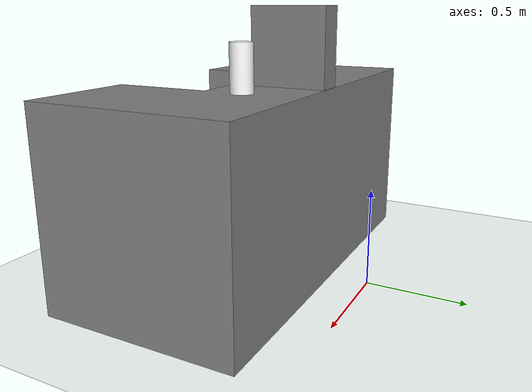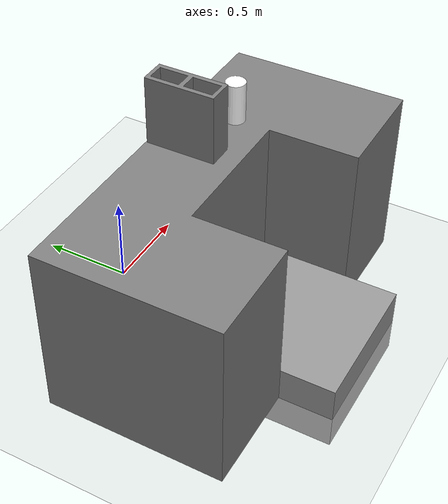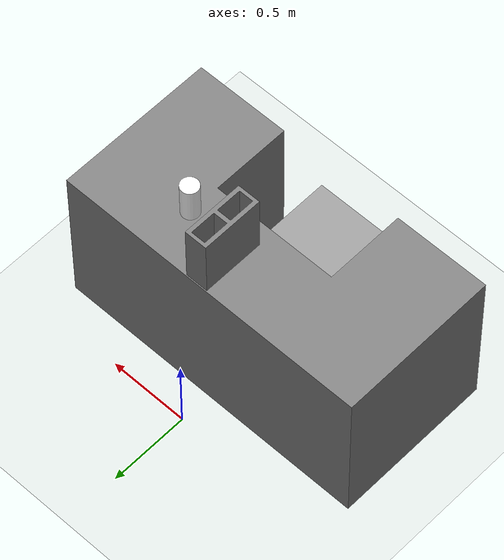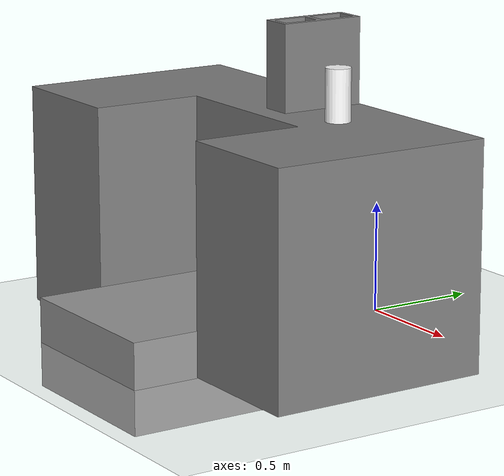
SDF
<sdf version="1.4">
 <world name="default">
  <scene>
   <ambient>255 255 255 255</ambient>
   <background>255 255 255 255</background>
   <origin_visual>0</origin_visual>
  </scene>
  <include><uri>model://ground_plane</uri></include>
  <light type="directional" name="sun">
   <cast_shadows>True</cast_shadows>
   <pose>10 20 20 -0.6 -0.45 0.0</pose>
   <diffuse>1 1 1 1</diffuse>
   <specular>0.2 0.2 0.2 1</specular>
   <attenuation>
    <range>1000</range>
    <constant>0.9</constant>
    <linear>0.01</linear>
    <quadratic>0.001</quadratic>
   </attenuation>
   <direction>-0.5 0.1 -0.9</direction>
  </light>
  <include>
   <uri>file:///home/jth/thesis_ws/src/mrk_robot_support/models/risebox</uri>
   <pose>0 -1.1 0  0 0 0</pose>
  </include>
  <include>
   <uri>file:///home/jth/thesis_ws/src/mrk_robot_support/models/workbench</uri>
   <pose>0 -1.2 0  0 0 0</pose>
  </include>
  <include>
   <uri>file:///home/jth/thesis_ws/src/mrk_robot_support/models/beer</uri>
   <pose>0.4 -0.5 1.0  0 0 0</pose>
  </include>
  <include>
   <uri>file:///home/jth/thesis_ws/src/mrk_robot_support/models/cinder_block_wide</uri>
   <pose>0 -0.4 1.19 0 1.5708 0</pose>
  </include>
 </world>
</sdf>

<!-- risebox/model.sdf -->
<sdf version='1.6'>
  <model name='risebox'>
    <link name='link'>
      <pose frame=''>0 0 0 0 -0 0</pose>
      <inertial>
        <mass>100</mass>
        <inertia>
          <ixx>6.6667</ixx>
          <ixy>0</ixy>
          <ixz>0</ixz>
          <iyy>6.6667</iyy>
          <iyz>0</iyz>
          <izz>10.6667</izz>
        </inertia>
        <pose frame=''>0 0 0 0 -0 0</pose>
      </inertial>
      <self_collide>0</self_collide>
      <kinematic>0</kinematic>
      <gravity>1</gravity>
      <visual name='visual'>
        <geometry>
          <box>
            <size>0.8 0.8 0.4</size>
          </box>
        </geometry>
        <material>
          <script>
            <name>Gazebo/Grey</name>
            <uri>file://media/materials/scripts/gazebo.material</uri>
          </script>
          <ambient>0.3 0.3 0.3 1</ambient>
          <diffuse>0.7 0.7 0.7 1</diffuse>
          <specular>0.01 0.01 0.01 1</specular>
          <emissive>0 0 0 1</emissive>
          <shader type='vertex'>
            <normal_map>__default__</normal_map>
          </shader>
        </material>
        <pose frame=''>0 0 0 0 -0 0</pose>
        <cast_shadows>1</cast_shadows>
        <transparency>0</transparency>
      </visual>
      <collision name='collision'>
        <laser_retro>0</laser_retro>
        <max_contacts>10</max_contacts>
        <pose frame=''>0 0 0 0 -0 0</pose>
        <geometry>
          <box>
            <size>0.8 0.8 0.4</size>
          </box>
        </geometry>
        <surface>
          <friction>
            <ode>
              <mu>1</mu>
              <mu2>1</mu2>
              <fdir1>0 0 0</fdir1>
              <slip1>0</slip1>
              <slip2>0</slip2>
            </ode>
            <torsional>
              <coefficient>1</coefficient>
              <patch_radius>0</patch_radius>
              <surface_radius>0</surface_radius>
              <use_patch_radius>1</use_patch_radius>
              <ode>
                <slip>0</slip>
              </ode>
            </torsional>
          </friction>
          <bounce>
            <restitution_coefficient>0</restitution_coefficient>
            <threshold>1e+06</threshold>
          </bounce>
          <contact>
            <collide_without_contact>0</collide_without_contact>
            <collide_without_contact_bitmask>1</collide_without_contact_bitmask>
            <collide_bitmask>1</collide_bitmask>
            <ode>
              <soft_cfm>0</soft_cfm>
              <soft_erp>0.2</soft_erp>
              <kp>1e+13</kp>
              <kd>1</kd>
              <max_vel>0.01</max_vel>
              <min_depth>0</min_depth>
            </ode>
            <bullet>
              <split_impulse>1</split_impulse>
              <split_impulse_penetration_threshold>-0.01</split_impulse_penetration_threshold>
              <soft_cfm>0</soft_cfm>
              <soft_erp>0.2</soft_erp>
              <kp>1e+13</kp>
              <kd>1</kd>
            </bullet>
          </contact>
        </surface>
      </collision>
    </link>
    <static>0</static>
    <allow_auto_disable>1</allow_auto_disable>
  </model>
</sdf>

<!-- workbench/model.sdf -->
<sdf version='1.6'>
  <model name='workbench'>
    <link name='body'>
      <pose frame=''>0 0 0 0 -0 0</pose>
      <inertial>
        <mass>1000</mass>
        <pose frame=''>0 0 0 0 -0 0</pose>
        <inertia>
          <ixx>166.666667</ixx>
          <ixy>0</ixy>
          <ixz>0</ixz>
          <iyy>416.666667</iyy>
          <iyz>0</iyz>
          <izz>416.666667</izz>
        </inertia>
      </inertial>
      <self_collide>0</self_collide>
      <kinematic>0</kinematic>
      <visual name='visual'>
        <geometry>
          <mesh>
            <uri>file:///home/jth/thesis_ws/src/mrk_robot_support/meshes/workbench/workbench.dae</uri>
            <scale>0.001 0.001 0.001</scale>
          </mesh>
        </geometry>
        <pose frame=''>0 0 0 0 -0 0</pose>
        <cast_shadows>1</cast_shadows>
        <transparency>0</transparency>
        <material>
          <ambient>0 0 0 1</ambient>
          <diffuse>0.5 0.5 0.5 1</diffuse>
          <specular>0 0 0 1</specular>
          <emissive>0 0 0 1</emissive>
          <shader type='vertex'>
            <normal_map>__default__</normal_map>
          </shader>
        </material>
      </visual>
      <collision name='collision'>
        <laser_retro>0</laser_retro>
        <max_contacts>10</max_contacts>
        <pose frame=''>0 0 0 0 -0 0</pose>
        <geometry>
          <mesh>
            <uri>file:///home/jth/thesis_ws/src/mrk_robot_support/meshes/workbench/workbench.dae</uri>
            <scale>0.001 0.001 0.001</scale>
          </mesh>
        </geometry>
        <surface>
          <friction>
            <ode>
              <mu>1</mu>
              <mu2>1</mu2>
              <fdir1>0 0 0</fdir1>
              <slip1>0</slip1>
              <slip2>0</slip2>
            </ode>
            <torsional>
              <coefficient>1</coefficient>
              <patch_radius>0</patch_radius>
              <surface_radius>0</surface_radius>
              <use_patch_radius>1</use_patch_radius>
              <ode>
                <slip>0</slip>
              </ode>
            </torsional>
          </friction>
          <bounce>
            <restitution_coefficient>0</restitution_coefficient>
            <threshold>1e+06</threshold>
          </bounce>
          <contact>
            <collide_without_contact>0</collide_without_contact>
            <collide_without_contact_bitmask>1</collide_without_contact_bitmask>
            <collide_bitmask>1</collide_bitmask>
            <ode>
              <soft_cfm>0</soft_cfm>
              <soft_erp>0.2</soft_erp>
              <kp>1e+13</kp>
              <kd>1</kd>
              <max_vel>0.01</max_vel>
              <min_depth>0</min_depth>
            </ode>
            <bullet>
              <split_impulse>1</split_impulse>
              <split_impulse_penetration_threshold>-0.01</split_impulse_penetration_threshold>
              <soft_cfm>0</soft_cfm>
              <soft_erp>0.2</soft_erp>
              <kp>1e+13</kp>
              <kd>1</kd>
            </bullet>
          </contact>
        </surface>
      </collision>
    </link>
    <static>1</static>
    <allow_auto_disable>1</allow_auto_disable>
  </model>
</sdf>

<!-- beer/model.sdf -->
<sdf version='1.6'>
  <model name='beer2'>
    <link name='link'>
      <pose frame=''>-0 0 0.115 0 -0 0</pose>
      <inertial>
        <mass>0.39</mass>
        <inertia>
          <ixx>0.00058</ixx>
          <ixy>0</ixy>
          <ixz>0</ixz>
          <iyy>0.00058</iyy>
          <iyz>0</iyz>
          <izz>0.00019</izz>
        </inertia>
        <pose frame=''>0 0 0 0 -0 0</pose>
      </inertial>
      <self_collide>0</self_collide>
      <kinematic>0</kinematic>
      <gravity>1</gravity>
      <visual name='visual'>
        <geometry>
          <cylinder>
            <radius>0.055</radius>
            <length>0.23</length>
          </cylinder>
        </geometry>
        <material>
          <script>
            <uri>model://beer/materials/scripts</uri>
            <uri>model://beer/materials/textures</uri>
            <name>Beer/Diffuse</name>
          </script>
          <ambient>1 1 1 1</ambient>
          <diffuse>1 1 1 1</diffuse>
          <specular>0 0 0 1</specular>
          <emissive>0 0 0 1</emissive>
          <shader type='vertex'>
            <normal_map>__default__</normal_map>
          </shader>
        </material>
        <pose frame=''>0 0 0 0 -0 0</pose>
        <cast_shadows>1</cast_shadows>
        <transparency>0</transparency>
      </visual>
      <collision name='collision'>
        <laser_retro>0</laser_retro>
        <max_contacts>10</max_contacts>
        <pose frame=''>0 0 0 0 -0 0</pose>
        <geometry>
          <box>
            <size>0.11 0.11 0.23</size>
          </box>
        </geometry>
        <surface>
          <friction>
            <ode>
              <mu>1</mu>
              <mu2>1</mu2>
              <fdir1>0 0 0</fdir1>
              <slip1>0</slip1>
              <slip2>0</slip2>
            </ode>
            <torsional>
              <coefficient>1</coefficient>
              <patch_radius>0</patch_radius>
              <surface_radius>0</surface_radius>
              <use_patch_radius>1</use_patch_radius>
              <ode>
                <slip>0</slip>
              </ode>
            </torsional>
          </friction>
          <bounce>
            <restitution_coefficient>0</restitution_coefficient>
            <threshold>1e+06</threshold>
          </bounce>
          <contact>
            <collide_without_contact>0</collide_without_contact>
            <collide_without_contact_bitmask>1</collide_without_contact_bitmask>
            <collide_bitmask>1</collide_bitmask>
            <ode>
              <soft_cfm>0</soft_cfm>
              <soft_erp>0.2</soft_erp>
              <kp>1e+13</kp>
              <kd>1</kd>
              <max_vel>0.01</max_vel>
              <min_depth>0</min_depth>
            </ode>
            <bullet>
              <split_impulse>1</split_impulse>
              <split_impulse_penetration_threshold>-0.01</split_impulse_penetration_threshold>
              <soft_cfm>0</soft_cfm>
              <soft_erp>0.2</soft_erp>
              <kp>1e+13</kp>
              <kd>1</kd>
            </bullet>
          </contact>
        </surface>
      </collision>
    </link>
    <static>0</static>
    <allow_auto_disable>1</allow_auto_disable>
  </model>
</sdf>

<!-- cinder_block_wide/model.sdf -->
<sdf version='1.6'>
  <model name='cinder_block_wide'>
    <link name='link'>
      <pose frame=''>0 0 0 0 -0 0</pose>
      <inertial>
        <pose frame=''>0 0 0.071438 0 -0 0</pose>
        <mass>5</mass>
        <inertia>
          <ixx>0.0681466</ixx>
          <ixy>0</ixy>
          <iyy>0.0681466</iyy>
          <ixz>0</ixz>
          <iyz>0</iyz>
          <izz>0.124808</izz>
        </inertia>
      </inertial>
      <self_collide>0</self_collide>
      <kinematic>0</kinematic>
      <visual name='visual'>
        <geometry>
          <mesh>
            <uri>model://cinder_block_wide/meshes/cinder_block_wide.dae</uri>
          </mesh>
        </geometry>
	<pose frame=''>0 0 0 0 -0 0</pose>
        <cast_shadows>1</cast_shadows>
        <transparency>0</transparency>
	<material>
          <ambient>0 170 255 255</ambient>
          <diffuse>0.5 0.5 0.5 1</diffuse>
          <specular>0 0 0 1</specular>
          <emissive>0 0 0 1</emissive>
          <shader type='vertex'>
            <normal_map>__default__</normal_map>
          </shader>
        </material>
      </visual>
      <collision name='top'>
        <laser_retro>0</laser_retro>
        <max_contacts>10</max_contacts>
        <pose frame=''>0 0 0.130175 0 -0 0</pose>
        <geometry>
          <box>
            <size>0.387354 0.387354 0.0254</size>
          </box>
        </geometry>
        <surface>
          <friction>
            <ode>
              <mu>1</mu>
              <mu2>1</mu2>
              <fdir1>0 0 0</fdir1>
              <slip1>0</slip1>
              <slip2>0</slip2>
            </ode>
            <torsional>
              <coefficient>1</coefficient>
              <patch_radius>0</patch_radius>
              <surface_radius>0</surface_radius>
              <use_patch_radius>1</use_patch_radius>
              <ode>
                <slip>0</slip>
              </ode>
            </torsional>
          </friction>
          <bounce>
            <restitution_coefficient>0</restitution_coefficient>
            <threshold>1e+06</threshold>
          </bounce>
          <contact>
            <collide_without_contact>0</collide_without_contact>
            <collide_without_contact_bitmask>1</collide_without_contact_bitmask>
            <collide_bitmask>1</collide_bitmask>
            <ode>
              <soft_cfm>0</soft_cfm>
              <soft_erp>0.2</soft_erp>
              <kp>1e+13</kp>
              <kd>1</kd>
              <max_vel>0.1</max_vel>
              <min_depth>0.001</min_depth>
            </ode>
            <bullet>
              <split_impulse>1</split_impulse>
              <split_impulse_penetration_threshold>-0.01</split_impulse_penetration_threshold>
              <soft_cfm>0</soft_cfm>
              <soft_erp>0.2</soft_erp>
              <kp>1e+13</kp>
              <kd>1</kd>
            </bullet>
          </contact>
        </surface>
      </collision>
      <collision name='bottom'>
        <laser_retro>0</laser_retro>
        <max_contacts>10</max_contacts>
        <pose frame=''>0 0 0.0127 0 -0 0</pose>
        <geometry>
          <box>
            <size>0.387354 0.387354 0.0254</size>
          </box>
        </geometry>
        <surface>
          <friction>
            <ode>
              <mu>1</mu>
              <mu2>1</mu2>
              <fdir1>0 0 0</fdir1>
              <slip1>0</slip1>
              <slip2>0</slip2>
            </ode>
            <torsional>
              <coefficient>1</coefficient>
              <patch_radius>0</patch_radius>
              <surface_radius>0</surface_radius>
              <use_patch_radius>1</use_patch_radius>
              <ode>
                <slip>0</slip>
              </ode>
            </torsional>
          </friction>
          <bounce>
            <restitution_coefficient>0</restitution_coefficient>
            <threshold>1e+06</threshold>
          </bounce>
          <contact>
            <collide_without_contact>0</collide_without_contact>
            <collide_without_contact_bitmask>1</collide_without_contact_bitmask>
            <collide_bitmask>1</collide_bitmask>
            <ode>
              <soft_cfm>0</soft_cfm>
              <soft_erp>0.2</soft_erp>
              <kp>1e+13</kp>
              <kd>1</kd>
              <max_vel>0.1</max_vel>
              <min_depth>0.001</min_depth>
            </ode>
            <bullet>
              <split_impulse>1</split_impulse>
              <split_impulse_penetration_threshold>-0.01</split_impulse_penetration_threshold>
              <soft_cfm>0</soft_cfm>
              <soft_erp>0.2</soft_erp>
              <kp>1e+13</kp>
              <kd>1</kd>
            </bullet>
          </contact>
        </surface>
      </collision>
      <collision name='left'>
        <laser_retro>0</laser_retro>
        <max_contacts>10</max_contacts>
        <pose frame=''>0 -0.183355 0.071438 0 -0 0</pose>
        <geometry>
          <box>
            <size>0.387354 0.020643 0.092075</size>
          </box>
        </geometry>
        <surface>
          <friction>
            <ode>
              <mu>1</mu>
              <mu2>1</mu2>
              <fdir1>0 0 0</fdir1>
              <slip1>0</slip1>
              <slip2>0</slip2>
            </ode>
            <torsional>
              <coefficient>1</coefficient>
              <patch_radius>0</patch_radius>
              <surface_radius>0</surface_radius>
              <use_patch_radius>1</use_patch_radius>
              <ode>
                <slip>0</slip>
              </ode>
            </torsional>
          </friction>
          <bounce>
            <restitution_coefficient>0</restitution_coefficient>
            <threshold>1e+06</threshold>
          </bounce>
          <contact>
            <collide_without_contact>0</collide_without_contact>
            <collide_without_contact_bitmask>1</collide_without_contact_bitmask>
            <collide_bitmask>1</collide_bitmask>
            <ode>
              <soft_cfm>0</soft_cfm>
              <soft_erp>0.2</soft_erp>
              <kp>1e+13</kp>
              <kd>1</kd>
              <max_vel>0.1</max_vel>
              <min_depth>0.001</min_depth>
            </ode>
            <bullet>
              <split_impulse>1</split_impulse>
              <split_impulse_penetration_threshold>-0.01</split_impulse_penetration_threshold>
              <soft_cfm>0</soft_cfm>
              <soft_erp>0.2</soft_erp>
              <kp>1e+13</kp>
              <kd>1</kd>
            </bullet>
          </contact>
        </surface>
      </collision>
      <collision name='right'>
        <laser_retro>0</laser_retro>
        <max_contacts>10</max_contacts>
        <pose frame=''>0 0.183355 0.071438 0 -0 0</pose>
        <geometry>
          <box>
            <size>0.387354 0.020643 0.092075</size>
          </box>
        </geometry>
        <surface>
          <friction>
            <ode>
              <mu>1</mu>
              <mu2>1</mu2>
              <fdir1>0 0 0</fdir1>
              <slip1>0</slip1>
              <slip2>0</slip2>
            </ode>
            <torsional>
              <coefficient>1</coefficient>
              <patch_radius>0</patch_radius>
              <surface_radius>0</surface_radius>
              <use_patch_radius>1</use_patch_radius>
              <ode>
                <slip>0</slip>
              </ode>
            </torsional>
          </friction>
          <bounce>
            <restitution_coefficient>0</restitution_coefficient>
            <threshold>1e+06</threshold>
          </bounce>
          <contact>
            <collide_without_contact>0</collide_without_contact>
            <collide_without_contact_bitmask>1</collide_without_contact_bitmask>
            <collide_bitmask>1</collide_bitmask>
            <ode>
              <soft_cfm>0</soft_cfm>
              <soft_erp>0.2</soft_erp>
              <kp>1e+13</kp>
              <kd>1</kd>
              <max_vel>0.1</max_vel>
              <min_depth>0.001</min_depth>
            </ode>
            <bullet>
              <split_impulse>1</split_impulse>
              <split_impulse_penetration_threshold>-0.01</split_impulse_penetration_threshold>
              <soft_cfm>0</soft_cfm>
              <soft_erp>0.2</soft_erp>
              <kp>1e+13</kp>
              <kd>1</kd>
            </bullet>
          </contact>
        </surface>
      </collision>
      <collision name='middle'>
        <laser_retro>0</laser_retro>
        <max_contacts>10</max_contacts>
        <pose frame=''>0 0 0.071438 0 -0 0</pose>
        <geometry>
          <box>
            <size>0.387354 0.0254 0.092075</size>
          </box>
        </geometry>
        <surface>
          <friction>
            <ode>
              <mu>1</mu>
              <mu2>1</mu2>
              <fdir1>0 0 0</fdir1>
              <slip1>0</slip1>
              <slip2>0</slip2>
            </ode>
            <torsional>
              <coefficient>1</coefficient>
              <patch_radius>0</patch_radius>
              <surface_radius>0</surface_radius>
              <use_patch_radius>1</use_patch_radius>
              <ode>
                <slip>0</slip>
              </ode>
            </torsional>
          </friction>
          <bounce>
            <restitution_coefficient>0</restitution_coefficient>
            <threshold>1e+06</threshold>
          </bounce>
          <contact>
            <collide_without_contact>0</collide_without_contact>
            <collide_without_contact_bitmask>1</collide_without_contact_bitmask>
            <collide_bitmask>1</collide_bitmask>
            <ode>
              <soft_cfm>0</soft_cfm>
              <soft_erp>0.2</soft_erp>
              <kp>1e+13</kp>
              <kd>1</kd>
              <max_vel>0.1</max_vel>
              <min_depth>0.001</min_depth>
            </ode>
            <bullet>
              <split_impulse>1</split_impulse>
              <split_impulse_penetration_threshold>-0.01</split_impulse_penetration_threshold>
              <soft_cfm>0</soft_cfm>
              <soft_erp>0.2</soft_erp>
              <kp>1e+13</kp>
              <kd>1</kd>
            </bullet>
          </contact>
        </surface>
      </collision>
    </link>
    <static>0</static>
    <allow_auto_disable>1</allow_auto_disable>
  </model>
</sdf>
